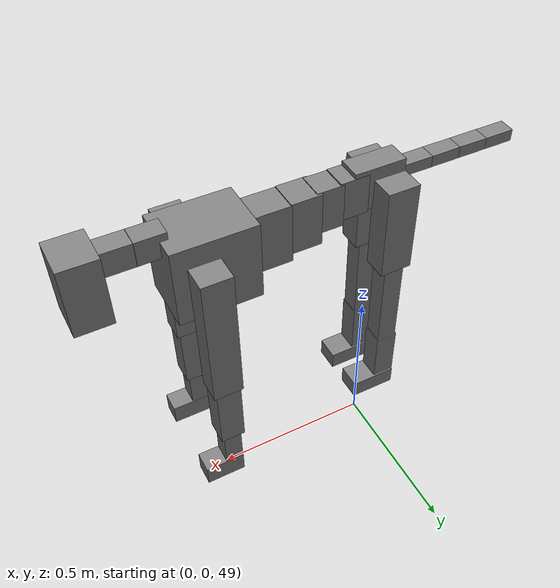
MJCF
<mujoco model="dog">

    <default>
        <joint armature="0.02" stiffness="1" damping="0.2" limited="true" />
        <geom condim="3" friction="1 0.05 0.05" margin="0.01" />
        <motor ctrllimited="true" ctrlrange="-1.0 1.0" forcelimited="true" gear="50" />
    </default>

    <compiler inertiafromgeom="true" angle="radian" />

    <option timestep="0.016" iterations="50" tolerance="1e-10" solver="Newton" jacobian="dense" cone="pyramidal" />

    <size nconmax="20000" njmax="60000" nstack="5000000" />
    <visual>
        <map force="0.1" zfar="30" />
        <rgba haze="0.15 0.25 0.35 1" />
        <quality shadowsize="2048" />
        <global offwidth="800" offheight="800" />
    </visual>

    <asset>
        <texture type="skybox" builtin="gradient" rgb1="0.3 0.5 0.7" rgb2="0 0 0" width="512" height="512" />
        <texture name="texplane" type="2d" builtin="checker" rgb1=".2 .3 .4" rgb2=".1 0.15 0.2" width="512" height="512" mark="cross" markrgb=".8 .8 .8" />
        <texture name="texgeom" type="cube" builtin="flat" mark="cross" width="127" height="1278" rgb1="0.8 0.6 0.4" rgb2="0.8 0.6 0.4" markrgb="1 1 1" random="0.01" />

        <material name="matplane" reflectance="0.3" texture="texplane" texrepeat="1 1" texuniform="true" />
        <material name="matgeom" texture="texgeom" texuniform="true" rgba="0.8 0.6 .4 1" />
    </asset>

    <worldbody>
        <geom name="floor" pos="0 0 0" size="0 0 .25" type="plane" material="matplane" condim="3" />

        <light directional="false" diffuse=".2 .2 .2" specular="0 0 0" pos="0 0 5" dir="0 0 -1" castshadow="false" />
        <light mode="targetbodycom" target="torso" directional="false" diffuse=".8 .8 .8" specular="0.3 0.3 0.3" pos="0 0 4.0" dir="0 0 -1" />

        <body name="root" pos="0 0 50">
            <freejoint name="root_1" />
            <geom type="box" pos="0 0 -0.02" size="0.0774  0.0358  0.063" density="2030" />

            <body name="spine1" pos="0.054 0 0">
                <joint name="spine1_y" axis="0 1 0" range="0 0.7" limited="true" />
                <geom type="box" pos="0.02375 0 -0.03" size="0.04375  0.0375  0.05985" density="2030" />

                <body name="spine2" pos="0.0612 0 0">
                    <joint name="spine2_y" axis="0 1 0" range="-0.15 0.15" limited="true" />
                    <geom type="box" pos="0.03555  0  -0.04" size="0.04055  0.039  0.06615" density="2030" />

                    <body name="spine3" pos="0.0730 0 0">
                        <joint name="spine3_y" axis="0 1 0" range="-0.15 0.15" limited="true" />
                        <geom type="box" pos="0.03555  0  -0.057" size="0.04555  0.0445  0.081" density="2030" />

                        <body name="spine4" pos="0.0780 0 0">
                            <joint name="spine4_y" axis="0 1 0" range="-0.15 0.15" limited="true" />
                            <geom type="box" pos="0.05265  0  -0.07" size="0.05265  0.045  0.09135" density="2030" />

                            <body name="torso" pos="0.1082 0 0">
                                <joint name="torso_y" axis="0 1 0" range="-0.15 0.15" limited="true" />
                                <geom type="box" pos="0.11925  0  -0.085" size="0.11925  0.085  0.11745" density="2030" />

                                <body name="neck1" pos="0.2160  0   0.0180">
                                    <joint name="neck1_y" axis="0 1 0" range="-1.2  -1" limited="true" />
                                    <geom type="box" pos="0.0423  0  0" size="0.0423  0.03  0.036" density="2325" />

                                    <body name="neck2" pos="0.0853  0  0">
                                        <joint name="neck2_y" axis="0 1 0" range="0.1  0" limited="true" />
                                        <geom type="box" pos="0.0423  0  0" size="0.0423  0.03  0.036" density="2325" />

                                        <body name="head" pos="0.0853  0  0">
                                            <joint name="head_y" axis="0 1 0" range="-0.3  -0.2" limited="true" />
                                            <geom type="box" pos="0.0531  0  -0.055" size="0.0531  0.06  0.1044" density="4030" />

                                        </body>
                                    </body>
                                </body>

                                <body name="front_shoulder" pos="0.156  0   -0.0480">
                                    <joint name="front_shoulder_y" axis="0 1 0" range="-1 1.5" limited="true" />
                                    <geom type="box" pos="0 0.13 -0.1832" size="0.0437  0.0373  0.2099" density="1158" />
                                    <geom type="box" pos="0 -0.13 -0.1832" size="0.0437  0.0373  0.2099" density="1158" />

                                    <body name="front_elbow" pos="0  0  -0.3664">
                                        <joint name="front_elbow_y" axis="0 1 0" range="-2 0" limited="true" />
                                        <geom type="box" pos="0 0.13 -0.1130" size="0.0361  0.0369  0.1130" density="1081" />
                                        <geom type="box" pos="0 -0.13 -0.1130" size="0.0361  0.0369  0.1130" density="1081" />

                                        <body name="front_wrist" pos="0  0  -0.2260">
                                            <joint name="front_wrist_y" axis="0 1 0" range="-0.2 0" limited="true" />
                                            <geom type="box" pos="0 0.13 -0.0645" size="0.0269  0.0299  0.0777" density="1664" />
                                            <geom type="box" pos="0 -0.13 -0.0645" size="0.0269  0.0299  0.0777" density="1664" />

                                            <body name="front_finger_end" pos="0  0  -0.1291">
                                                <joint name="front_finger_y" axis="0 1 0" range="-0.4 1" limited="true" />
                                                <geom type="box" pos="0.0326  0.13  -0.0185" size="0.0597  0.0326  0.0335" density="1515" />
                                                <geom type="box" pos="0.0326  -0.13  -0.0185" size="0.0597  0.0326  0.0335" density="1515" />

                                            </body>

                                        </body>
                                    </body>
                                </body>

                            </body>
                        </body>
                    </body>
                </body>
            </body>

            <body name="back_hip" pos="-0.03 0 -0.018">
                <joint name="back_hip_y" axis="0 1 0" range="-1.5 0.3" limited="true" />
                <geom type="box" pos="0 0.07 -0.1183" size="0.0484  0.0379  0.1411" density="1154" />
                <geom type="box" pos="0 -0.07 -0.1183" size="0.0484  0.0379  0.1411" density="1154" />

                <body name="back_knee" pos="0  0  -0.2366">
                    <joint name="back_knee_y" axis="0 1 0" range="0 2.8" limited="true" />
                    <geom type="box" pos="0 0.07 -0.1575" size="0.0309  0.0304  0.1730" density="1227" />
                    <geom type="box" pos="0 -0.07 -0.1575" size="0.0309  0.0304  0.1730" density="1227" />

                    <body name="back_ankle" pos="0  0  -0.3150">
                        <joint name="back_ankle_y" axis="0 1 0" range="-2.2 0" limited="true" />
                        <geom type="box" pos="0 0.07 -0.0852" size="0.0336  0.0336  0.0965" density="1284" />
                        <geom type="box" pos="0 -0.07 -0.0852" size="0.0336  0.0336  0.0965" density="1284" />

                        <body name="back_toe_end" pos="0  0  -0.1704">
                            <joint name="back_toe_y" axis="0 1 0" range="-0.4 1" limited="true" />
                            <geom type="box" pos="0.0384  0.07  -0.0136" size="0.0704  0.0384  0.0286" density="1515" />
                            <geom type="box" pos="0.0384  -0.07  -0.0136" size="0.0704  0.0384  0.0286" density="1515" />

                        </body>
                    </body>
                </body>
            </body>

            <body name="tail1" pos="-0.074 0 -0.006">
                <joint name="tail1_y" axis="0 1 0" range="-0.2 0.2" limited="true" />
                <geom type="box" pos="-0.0536  0  0" size="0.045  0.025  0.0175" density="1587" />

                <body name="tail2" pos="-0.09 0 0">
                    <joint name="tail2_y" axis="0 1 0" range="-0.2 0.2" limited="true" />
                    <geom type="box" pos="-0.0536  0  0" size="0.045  0.025  0.0175" density="1587" />

                    <body name="tail3" pos="-0.09 0 0">
                        <joint name="tail3_y" axis="0 1 0" range="-0.2 0.2" limited="true" />
                        <geom type="box" pos="-0.0536  0  0" size="0.045  0.025  0.0175" density="1587" />

                        <body name="tail4" pos="-0.09 0 0">
                            <joint name="tail4_y" axis="0 1 0" range="-0.2 0.2" limited="true" />
                            <geom type="box" pos="-0.0536  0  0" size="0.045  0.025  0.0175" density="1587" />

                        </body>
                    </body>
                </body>
            </body>
        </body>
    </worldbody>

    <actuator>
        <motor joint="spine1_y" forcerange="-150 150     " />
        <motor joint="spine2_y" forcerange="-150 150     " />
        <motor joint="spine3_y" forcerange="-150 150     " />
        <motor joint="spine4_y" forcerange="-150 150     " />
        <motor joint="torso_y" forcerange="-150 150     " />
        <motor joint="neck1_y" forcerange="-100 100       " />
        <motor joint="neck2_y" forcerange="-100 100       " />
        <motor joint="head_y" forcerange="-150 150       " />
        <motor joint="front_shoulder_y" forcerange="-153.82 194.90" />
        <motor joint="front_elbow_y" forcerange="-184.82 183.63" />
        <motor joint="front_wrist_y" forcerange="-112.37 126.45" />
        <motor joint="front_finger_y" forcerange="-61.58 72.18" />
        <motor joint="back_hip_y" forcerange="-305.99 399.80" />
        <motor joint="back_knee_y" forcerange="-306.11 336.22" />
        <motor joint="back_angle_y" forcerange="-240.77 197.06" />
        <motor joint="back_toe_y" forcerange="-124.39 102.69" />
        <motor joint="tail1_y" forcerange="-50 50     " />
        <motor joint="tail2_y" forcerange="-50 50     " />
        <motor joint="tail3_y" forcerange="-50 50     " />
        <motor joint="tail4_y" forcerange="-50 50     " />
    </actuator>
</mujoco>
